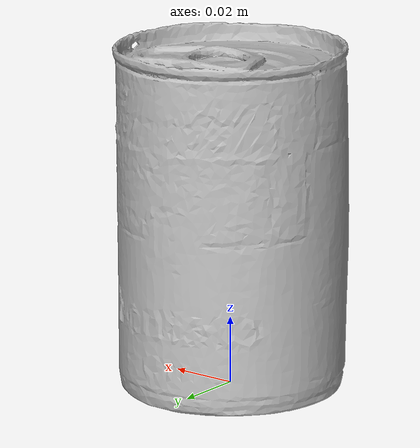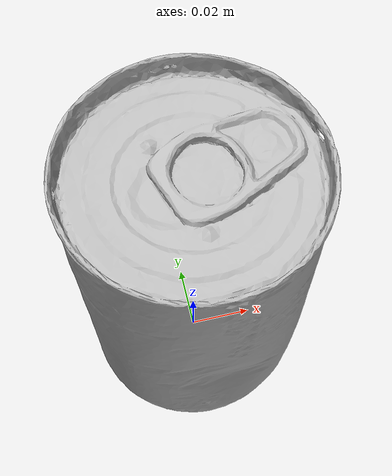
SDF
<?xml version="1.0" ?>
<sdf version='1.8'>
  <model name='ycb_010_tomato_soup_can'>
    <link name='body'>
      <inertial>
        <mass>0.349</mass>
        <pose>0.000000 0.000000 0.049726 0 0 0</pose>
        <inertia>
          <ixx>0.000349926494745</ixx>
          <ixy>-1.46031435577e-07</ixy>
          <ixz>-8.09615684957e-07</ixz>
          <iyy>0.000352671686652</iyy>
          <iyz>3.54459054371e-07</iyz>
          <izz>0.000191836705141</izz>
        </inertia>
      </inertial>
      <visual name='ycb_010_tomato_soup_can_visual'>
        <pose>0.009200 -0.084100 -0.000300 0 0 0</pose>
        <geometry>
          <mesh>
            <uri>model://ycb_010_tomato_soup_can/meshes/textured.dae</uri>
          </mesh>
        </geometry>
      </visual>
      <collision name='ycb_010_tomato_soup_can_collision'>
        <pose>0.009200 -0.084100 -0.000300 0 0 0</pose>
        <geometry>
          <mesh>
            <uri>model://ycb_010_tomato_soup_can/meshes/nontextured.stl</uri>
          </mesh>
        </geometry>
        <max_contacts>10</max_contacts>
        <surface>
          <contact>
            <ode>
              <kp>1e15</kp>
              <kd>1e13</kd>
            </ode>
          </contact>
        </surface>
      </collision>
    </link>
  </model>
</sdf>
